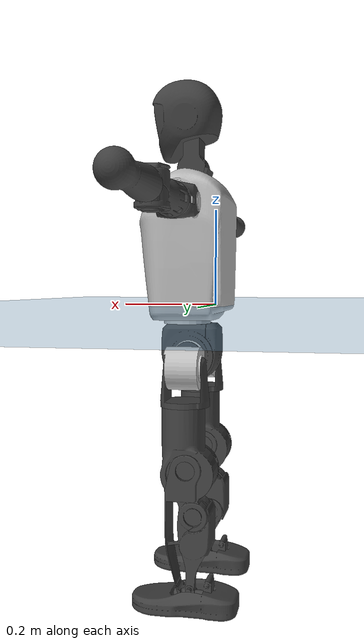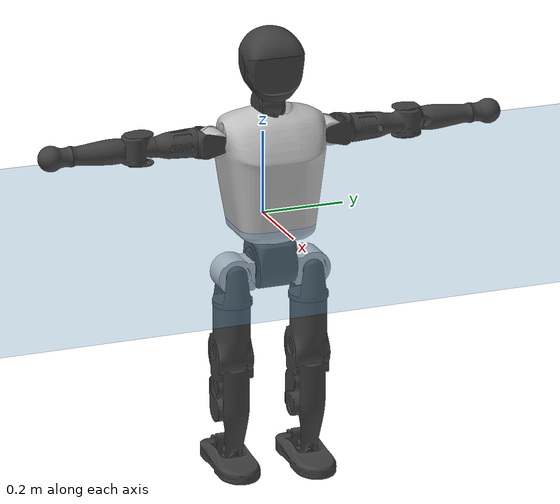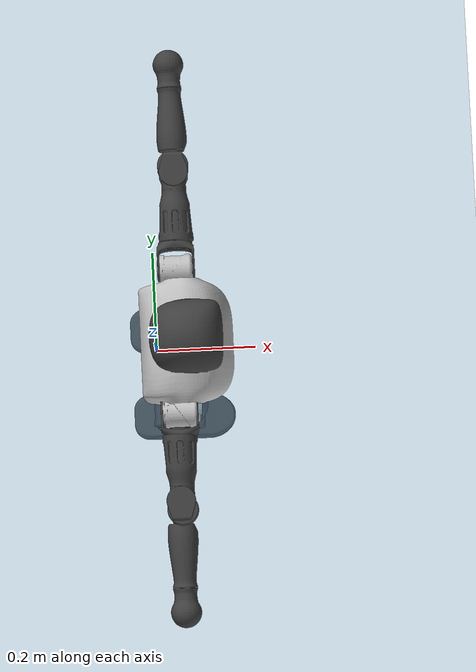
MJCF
<mujoco model="T1">
  <compiler angle="radian" assetdir="assets" balanceinertia="true" inertiafromgeom="false"/>

  <option timestep="0.005" density="1.2" viscosity="2e-05"/>

  <size nkey="1"/>

  <visual>
    <quality shadowsize="8192"/>
    <map shadowclip="0.5"/>
  </visual>

  <default>
    <default class="/">
      <joint armature="0.01" damping="0.01" frictionloss="0.1"/>
      <geom contype="0" conaffinity="0" group="1" solref="-1000 -80"/>
      <site size="0.01 0.005 0.005" group="5"/>
      <general forcelimited="true" biastype="affine" gainprm="25" biasprm="0 -25 -0.6"/>
      <default class="t1">
        <geom rgba="0.25 0.25 0.25 1"/>
        <default class="visual">
          <geom type="mesh" group="2"/>
        </default>
        <default class="collision">
          <geom group="3"/>
        </default>
        <default class="foot">
          <geom size="0.1115 0.05 0.015" type="box" condim="6" group="4" priority="1" solimp="0.015 1 0.015"/>
        </default>
        <default class="reward_collision_sphere">
          <geom group="5" rgba="1 0 0 1"/>
        </default>
      </default>
    </default>
  </default>

  <asset>
    <texture type="skybox" colorspace="auto" name="//unnamed_texture_0" builtin="gradient" rgb1="0.95 0.95 0.95" rgb2="0.95 0.95 0.95" width="100" height="600"/>
    <texture type="2d" colorspace="auto" name="texplane" builtin="checker" rgb1="0.345 0.575 0.748" rgb2="0.345 0.575 0.748" markrgb="1 1 1" width="512" height="512"/>
    <material name="MatPlane" class="/" texture="texplane" texuniform="true" texrepeat="2 2" specular="0.9"/>
    <mesh name="Trunk" class="/" file="Trunk.stl"/>
    <mesh name="H1" class="/" file="H1.stl"/>
    <mesh name="H2" class="/" file="H2.stl"/>
    <mesh name="AL1" class="/" file="AL1.stl"/>
    <mesh name="AL2" class="/" file="AL2.stl"/>
    <mesh name="AL3" class="/" file="AL3.stl"/>
    <mesh name="left_hand_link" class="/" file="left_hand_link.stl"/>
    <mesh name="AR1" class="/" file="AR1.stl"/>
    <mesh name="AR2" class="/" file="AR2.stl"/>
    <mesh name="AR3" class="/" file="AR3.stl"/>
    <mesh name="right_hand_link" class="/" file="right_hand_link.stl"/>
    <mesh name="Waist" class="/" file="Waist.stl"/>
    <mesh name="Hip_Pitch_Left" class="/" file="Hip_Pitch_Left.stl"/>
    <mesh name="Hip_Roll_Left" class="/" file="Hip_Roll_Left.stl"/>
    <mesh name="Hip_Yaw_Left" class="/" file="Hip_Yaw_Left.stl"/>
    <mesh name="Shank_Left" class="/" file="Shank_Left.stl"/>
    <mesh name="Ankle_Cross_Left" class="/" file="Ankle_Cross_Left.stl"/>
    <mesh name="left_foot_link" class="/" file="left_foot_link.stl"/>
    <mesh name="Hip_Pitch_Right" class="/" file="Hip_Pitch_Right.stl"/>
    <mesh name="Hip_Roll_Right" class="/" file="Hip_Roll_Right.stl"/>
    <mesh name="Hip_Yaw_Right" class="/" file="Hip_Yaw_Right.stl"/>
    <mesh name="Shank_Right" class="/" file="Shank_Right.stl"/>
    <mesh name="Ankle_Cross_Right" class="/" file="Ankle_Cross_Right.stl"/>
    <mesh name="right_foot_link" class="/" file="right_foot_link.stl"/>
  </asset>

  <worldbody>
    <geom name="floor" class="/" size="100 100 0.125" type="plane" group="0" material="MatPlane"/>
    <light name="toplight_shadow" class="/" pos="0 0 5" dir="0.0990148 0.0990148 -0.990148" type="directional" ambient="0.04 0.04 0.04" diffuse="0.55 0.55 0.55" specular="0.12 0.12 0.12"/>
    <light name="toplight_fill" class="/" pos="0 0 5" dir="0.0990148 0.0990148 -0.990148" type="directional" castshadow="false" ambient="0.04 0.04 0.04" diffuse="0.3 0.3 0.3" specular="0.08 0.08 0.08"/>
    <body name="trunk" childclass="t1" pos="-0.000140962 0.00010097 0.00259642" quat="1 -0.000338115 -0.000109735 -7.97295e-05">
      <inertial pos="0.0447051 7.45813e-05 0.0969308" quat="0.999915 -0.00343732 -0.0124458 -0.00171877" mass="7.45006" diaginertia="0.0309157 0.0422768 0.0344362"/>
      <joint name="//unnamed_joint_0" type="free" armature="0" damping="0" frictionloss="0"/>
      <geom name="//unnamed_geom_1" class="visual" rgba="0.76 0.76 0.76 1" mesh="Trunk"/>
      <geom name="//unnamed_geom_2" class="collision" size="0.0654285 0.087238 0.130857" pos="0.0486354 0 0.110025" type="box"/>
      <geom name="//unnamed_geom_3" class="reward_collision_sphere" size="0.100324" pos="0.0486354 0 0.0916874"/>
      <geom name="//unnamed_geom_4" class="reward_collision_sphere" size="0.0130857" pos="0.0486354 0.0756224 0"/>
      <geom name="//unnamed_geom_5" class="reward_collision_sphere" size="0.0130857" pos="0.0486354 -0.0756224 0"/>
      <geom name="//unnamed_geom_6" class="reward_collision_sphere" size="0.0130857" pos="0.0486354 0.0951953 0.165037"/>
      <geom name="//unnamed_geom_7" class="reward_collision_sphere" size="0.0130857" pos="0.0486354 -0.0951953 0.165037"/>
      <site name="imu" pos="0.012647 -0.0136761 0.00199893" size="0.0087238"/>
      <camera name="track" pos="0 -1.77935 0" quat="0.707107 0.707107 0 0" mode="trackcom"/>
      <camera name="ego_camera" pos="0.0988921 0 0.385087" quat="-0.5 -0.5 0.5 0.5"/>
      <body name="H1" pos="0.049242 -0.00209094 0.222458" quat="1 0.000175444 -0.000440281 -0.000446666">
        <inertial pos="-0.000957276 -0.000419226 0.0537226" quat="0.765488 -0.0133058 0.000396858 0.643313" mass="0.295719" diaginertia="8.80175e-05 0.000124419 0.000100813"/>
        <joint name="AAHead_yaw" pos="0 0 0" axis="2.1429e-05 0.000658187 1" stiffness="0.0126518" range="-1.56439 1.60526" armature="0.00838995" damping="0.00595242" frictionloss="0.0903804"/>
        <geom name="//unnamed_geom_8" class="visual" mesh="H1"/>
        <body name="H2" pos="-0.000216857 -0.00282431 0.057371" quat="1 -0.000129021 -3.1339e-05 0.000196767">
          <inertial pos="0.00817006 0.00354397 0.092251" quat="0.988432 0.106238 -0.0753995 -0.0776627" mass="0.434272" diaginertia="0.000716099 0.00108279 0.0011361"/>
          <joint name="Head_pitch" pos="0 0 0" axis="0.00238023 -0.999992 -0.00322889" stiffness="0.00297607" range="-1.21955 0.390749" armature="0.00755761" damping="0" frictionloss="0.0881113"/>
          <geom name="//unnamed_geom_9" class="visual" mesh="H2"/>
          <geom name="//unnamed_geom_10" class="collision" size="0.0697904" pos="0.00810591 0 0.100856"/>
          <geom name="//unnamed_geom_11" class="reward_collision_sphere" size="0.0785142" pos="0.0162118 0 0.0916874"/>
        </body>
      </body>
      <body name="AL1" pos="0.046495 0.0955862 0.199469" quat="1 -0.000107644 0.000436042 -2.1235e-05">
        <inertial pos="1.58657e-05 0.0406851 0.00262827" quat="0.508261 0.494065 -0.50033 0.497233" mass="0.358334" diaginertia="0.000487709 0.000726726 0.000192051"/>
        <joint name="Left_Shoulder_Pitch" pos="0 0 0" axis="0.00411991 0.99999 0.0017361" range="-3.36396 1.17756" armature="0.00825738" damping="0.00327146" frictionloss="0.0886832"/>
        <geom name="//unnamed_geom_12" class="visual" rgba="0.76 0.76 0.76 1" mesh="AL1"/>
        <body name="AL2" pos="0.000745952 0.0455268 -0.00110335" quat="0.999999 -0.000144531 0.00015701 0.00135048">
          <inertial pos="0.00365277 0.0329768 -0.00264028" quat="0.488603 0.515124 -0.48771 0.507989" mass="0.113106" diaginertia="0.00014563 0.000205421 0.000119891"/>
          <joint name="Left_Shoulder_Roll" pos="0 0 0" axis="-1 0.000770515 -0.000605246" range="-1.61378 1.75567" armature="0.00921403" damping="0" frictionloss="0.0873721"/>
          <geom name="//unnamed_geom_13" class="visual" mesh="AL2"/>
          <body name="AL3" pos="0.00310414 0.0572074 0.000689762" quat="0.999999 -0.000771427 3.30193e-05 -0.000771241">
            <inertial pos="-0.00138185 0.0755964 0.000311223" quat="0.704682 0.709402 -0.0122783 0.00465692" mass="0.699363" diaginertia="0.00466425 0.00739397 0.000410672"/>
            <joint name="Left_Elbow_Pitch" pos="0 0 0" axis="-0.00236143 -0.999996 0.001325" range="-2.29037 2.28148" armature="0.00893533" damping="0.0110406" frictionloss="0.0896494"/>
            <geom name="//unnamed_geom_14" class="visual" mesh="AL3"/>
            <geom name="//unnamed_geom_15" class="collision" size="0.0261714 0.0654285" pos="0 0.0444838 0" quat="0.707105 0.707108 0 0" type="cylinder"/>
            <geom name="//unnamed_geom_16" class="reward_collision_sphere" size="0.0314057"/>
            <body name="left_hand_link" pos="0.000448133 0.133793 0.00314752" quat="0.999999 -0.000963399 0.000568368 0.000792168">
              <inertial pos="-0.000111989 0.0968672 -0.00217548" quat="0.713619 0.700448 0.00816961 -0.00740592" mass="0.209862" diaginertia="0.00281102 0.00442386 0.000133416"/>
              <joint name="Left_Elbow_Yaw" pos="0 0 0" axis="-0.014138 -0.00780191 0.99987" stiffness="0.000255491" range="-2.44647 0.0481072" armature="0.00885264" damping="0.00224046" frictionloss="0.0982593"/>
              <geom name="//unnamed_geom_17" class="visual" mesh="left_hand_link"/>
              <geom name="//unnamed_geom_18" class="collision" size="0.0261714 0.0763333" pos="0 0.115658 0" quat="0.707105 0.707108 0 0" type="cylinder"/>
              <geom name="//unnamed_geom_19" class="reward_collision_sphere" size="0.043619"/>
              <geom name="//unnamed_geom_20" class="reward_collision_sphere" size="0.0305333" pos="0 0.0978643 0"/>
              <geom name="//unnamed_geom_21" class="reward_collision_sphere" size="0.0305333" pos="0 0.19128 0"/>
            </body>
          </body>
        </body>
      </body>
      <body name="AR1" pos="0.0436822 -0.0911604 0.200061" quat="1 -6.24949e-05 -9.46175e-05 2.39183e-05">
        <inertial pos="-0.00120706 -0.0393259 -0.00123235" quat="0.504615 0.49588 -0.504184 0.495242" mass="0.35891" diaginertia="0.000483906 0.00073459 0.000190037"/>
        <joint name="Right_Shoulder_Pitch" pos="0 0 0" axis="-0.0054716 -0.999981 -0.00286199" stiffness="0.0162207" range="-1.17405 3.33111" armature="0.00853109" damping="0.0212911" frictionloss="0.0887542"/>
        <geom name="//unnamed_geom_22" class="visual" rgba="0.76 0.76 0.76 1" mesh="AR1"/>
        <body name="AR2" pos="-0.00284182 -0.038446 0.000549281" quat="1 0.000528282 -0.000499539 4.40811e-05">
          <inertial pos="0.00112496 -0.0334776 -0.00199078" quat="0.512462 0.488908 -0.516215 0.481532" mass="0.105149" diaginertia="0.000135876 0.000187042 0.000115788"/>
          <joint name="Right_Shoulder_Roll" pos="0 0 0" axis="-0.999974 -0.0044594 0.00568298" stiffness="0.0108704" range="-1.71531 1.51746" armature="0.00897923" damping="0.00628306" frictionloss="0.0753341"/>
          <geom name="//unnamed_geom_23" class="visual" mesh="AR2"/>
          <body name="AR3" pos="-0.00138235 -0.0512894 0.00251354" quat="1 -3.66452e-05 0.000106257 0.000341401">
            <inertial pos="-0.000407522 -0.0751131 -0.000285167" quat="0.715784 0.698313 0.00288182 -0.0021495" mass="0.66451" diaginertia="0.00441557 0.00728532 0.000405344"/>
            <joint name="Right_Elbow_Pitch" pos="0 0 0" axis="0.000447432 1 -0.000838279" stiffness="0.0119952" range="-2.27057 2.26316" armature="0.00917654" damping="0.0152547" frictionloss="0.09888"/>
            <geom name="//unnamed_geom_24" class="visual" mesh="AR3"/>
            <geom name="//unnamed_geom_25" class="collision" size="0.0261714 0.0654285" pos="0 -0.0444838 0" quat="0.707105 0.707108 0 0" type="cylinder"/>
            <geom name="//unnamed_geom_26" class="reward_collision_sphere" size="0.0314057"/>
            <body name="right_hand_link" pos="-0.00290681 -0.129403 -0.00094812" quat="1 -0.000317418 0.000670915 -0.000285206">
              <inertial pos="-0.00110536 -0.097626 0.00339045" quat="0.700048 0.714016 0.00938183 0.0050931" mass="0.207374" diaginertia="0.00269249 0.00441464 0.000135077"/>
              <joint name="Right_Elbow_Yaw" pos="0 0 0" axis="0.00264832 0.00224105 0.999994" stiffness="0.00418027" range="-0.0532157 2.41866" armature="0.00996705" damping="0.00988095" frictionloss="0.0881272"/>
              <geom name="//unnamed_geom_27" class="visual" mesh="right_hand_link"/>
              <geom name="//unnamed_geom_28" class="collision" size="0.0261714 0.0763333" pos="0 -0.115658 0" quat="0.707105 0.707108 0 0" type="cylinder"/>
              <geom name="//unnamed_geom_29" class="reward_collision_sphere" size="0.043619"/>
              <geom name="//unnamed_geom_30" class="reward_collision_sphere" size="0.0305333" pos="0 -0.0978643 0"/>
              <geom name="//unnamed_geom_31" class="reward_collision_sphere" size="0.0305333" pos="0 -0.19128 0"/>
            </body>
          </body>
        </body>
      </body>
      <body name="Waist" pos="0.051001 -0.000837581 -0.108334" quat="1 8.76544e-05 -1.13814e-05 4.02344e-05">
        <inertial pos="0.00403107 -0.00106836 0.00592777" quat="0.984154 0.00205135 -0.177263 0.00380313" mass="1.70092" diaginertia="0.0018192 0.00276126 0.00293331"/>
        <joint name="Waist" pos="0 0 0" axis="0.00196703 -0.00195799 0.999996" range="-1.52051 1.58008" armature="0.00765491" damping="0.0124177" frictionloss="0.0902152"/>
        <geom name="//unnamed_geom_32" class="visual" mesh="Waist"/>
        <body name="Hip_Pitch_Left" pos="-0.00177719 0.0963472 -0.000951964" quat="0.999999 -0.000610669 0.0010475 -0.000121951">
          <inertial pos="-0.000601485 -0.00409925 -0.0164185" quat="0.975316 0.22037 0.0139164 0.00129424" mass="0.669849" diaginertia="0.000620507 0.000817133 0.000793414"/>
          <joint name="Left_Hip_Pitch" pos="0 0 0" axis="0.000474589 1 0.000560523" stiffness="0.0101277" range="-1.80125 1.61374" armature="0.00880573" damping="0.0147175" frictionloss="0.0870598"/>
          <geom name="//unnamed_geom_33" class="visual" rgba="0.76 0.76 0.76 1" mesh="Hip_Pitch_Left"/>
          <body name="Hip_Roll_Left" pos="0.0010634 -0.000210563 -0.0205124" quat="0.999999 0.000187885 0.00107552 0.000237884">
            <inertial pos="0.000401339 -0.000211918 -0.0486975" quat="0.709018 -0.00549786 -0.00594892 0.705144" mass="0.256882" diaginertia="0.000614167 0.000822142 0.00032426"/>
            <joint name="Left_Hip_Roll" pos="0 0 0" axis="-0.999998 2.56844e-05 0.00212533" range="-1.58166 0.212217" armature="0.0086024" damping="0.0155187" frictionloss="0.0985972"/>
            <geom name="//unnamed_geom_34" class="visual" mesh="Hip_Roll_Left"/>
            <geom name="//unnamed_geom_35" class="reward_collision_sphere" size="0.0479809"/>
            <body name="Hip_Yaw_Left" pos="0.000893528 -0.000253502 -0.0772421" quat="1 0.000125672 -0.000587113 -0.000645311">
              <inertial pos="-0.00457404 -0.00107743 -0.0826768" quat="0.699177 -0.0304066 -0.0432898 0.712989" mass="1.41887" diaginertia="0.0088892 0.0136559 0.0017066"/>
              <joint name="Left_Hip_Yaw" pos="0 0 0" axis="0.00450207 -0.0106167 -0.999934" range="-0.996807 0.980323" armature="0.00856225" damping="0.0124247" frictionloss="0.0875088"/>
              <geom name="//unnamed_geom_36" class="visual" mesh="Hip_Yaw_Left"/>
              <geom name="//unnamed_geom_37" class="collision" size="0.043619 0.0697904" type="cylinder"/>
              <body name="Shank_Left" pos="-0.0114475 1.14814e-05 -0.124668" quat="1 -0.000339271 0.000289021 0.000485739">
                <inertial pos="-0.00541266 0.000548406 -0.114405" quat="0.996637 0.00234553 -0.0315045 0.0756144" mass="1.16571" diaginertia="0.0120551 0.0199686 0.00122738"/>
                <joint name="Left_Knee_Pitch" pos="0 0 0" axis="-0.000429168 1 0.000721754" stiffness="0.00266323" range="0.00254461 2.34387" armature="0.00855027" damping="0.0153026" frictionloss="0.0991896"/>
                <geom name="//unnamed_geom_38" class="visual" mesh="Shank_Left"/>
                <geom name="//unnamed_geom_39" class="collision" size="0.043619 0.0654285" pos="0 0 -0.110025" type="cylinder"/>
                <geom name="//unnamed_geom_40" class="reward_collision_sphere" size="0.0567047"/>
                <body name="Ankle_Cross_Left" pos="-0.0013764 -0.000825429 -0.258417" quat="1 8.43618e-05 0.000732017 -0.000415359">
                  <inertial pos="-0.0019531 0.00131764 -0.00987022" quat="0.443143 0.551041 0.551027 0.443111" mass="0.0494659" diaginertia="1.08537e-05 1.43865e-05 7.43983e-06"/>
                  <joint name="Left_Ankle_Pitch" pos="0 0 0" axis="0.00735124 0.999969 0.0029594" range="-0.916596 0.383252" armature="0.00811125" damping="0.0111204" frictionloss="0.0991989"/>
                  <geom name="//unnamed_geom_41" class="visual" mesh="Ankle_Cross_Left"/>
                  <body name="left_foot_link" pos="0.00182936 -0.000123833 -0.0145522" quat="1 3.58823e-06 -1.42008e-05 -3.20738e-06">
                    <inertial pos="-5.12497e-05 -0.00269692 -0.00926263" quat="0.000584492 0.619397 -0.0014914 0.785076" mass="0.450273" diaginertia="0.000973425 0.00133636 0.00141517"/>
                    <joint name="Left_Ankle_Roll" pos="0 0 0" axis="-0.999997 0.000812171 -0.00243379" range="-0.480743 0.43344" armature="0.00873068" damping="0.00983618" frictionloss="0.0837716"/>
                    <geom name="//unnamed_geom_42" class="visual" mesh="left_foot_link"/>
                    <geom name="left_foot" class="foot" size="0.0993729 0.044537 0.0141576" pos="0.00810591 0 -0.0137531"/>
                    <geom name="//unnamed_geom_44" class="reward_collision_sphere" size="0.0453638" pos="0.00810591 0 -0.0137531"/>
                    <geom name="//unnamed_geom_45" class="reward_collision_sphere" size="0.0261714" pos="0.0770061 -0.0204625 -0.0137531"/>
                    <geom name="//unnamed_geom_46" class="reward_collision_sphere" size="0.0261714" pos="-0.0567413 -0.0204625 -0.0137531"/>
                    <site name="left_foot" class="foot" pos="0.00810591 0 -0.0137531" size="0.0087238"/>
                  </body>
                </body>
              </body>
            </body>
          </body>
        </body>
        <body name="Hip_Pitch_Right" pos="0.000390352 -0.0948999 0.00195585" quat="0.999999 -0.000667239 0.00039666 -0.000790183">
          <inertial pos="0.000452143 0.006361 -0.0136338" quat="0.970315 -0.241385 0.013439 -0.00646139" mass="0.673211" diaginertia="0.000625877 0.000810898 0.00082882"/>
          <joint name="Right_Hip_Pitch" pos="0 0 0" axis="-0.00369551 -0.999926 -0.011607" range="-1.57852 1.81588" armature="0.00981247" damping="0.011771" frictionloss="0.0940558"/>
          <geom name="//unnamed_geom_47" class="visual" rgba="0.76 0.76 0.76 1" mesh="Hip_Pitch_Right"/>
          <body name="Hip_Roll_Right" pos="0.00131697 -0.000838836 -0.0163581" quat="0.999999 0.00116536 -0.000160538 0.000514584">
            <inertial pos="0.00381784 -0.000392291 -0.0513249" quat="0.711166 -0.00888014 -0.017283 0.702755" mass="0.248011" diaginertia="0.000574424 0.000811766 0.000322543"/>
            <joint name="Right_Hip_Roll" pos="0 0 0" axis="-0.999987 0.00506367 0.000828797" stiffness="0.00810358" range="-0.196363 1.62553" armature="0.00848771" damping="0.0039437" frictionloss="0.0873442"/>
            <geom name="//unnamed_geom_48" class="visual" mesh="Hip_Roll_Right"/>
            <geom name="//unnamed_geom_49" class="reward_collision_sphere" size="0.0479809"/>
            <body name="Hip_Yaw_Right" pos="0.000257849 -0.00237654 -0.0744258" quat="0.999999 2.47033e-05 0.00144394 0.000520069">
              <inertial pos="-0.00329391 0.000748926 -0.0821879" quat="0.71445 -0.0312562 -0.0442474 0.697586" mass="1.49321" diaginertia="0.00964273 0.0150434 0.00176371"/>
              <joint name="Right_Hip_Yaw" pos="0 0 0" axis="0.00363041 0.00453369 -0.999983" range="-1.01937 0.958157" armature="0.0088416" damping="0.00802774" frictionloss="0.0753467"/>
              <geom name="//unnamed_geom_50" class="visual" mesh="Hip_Yaw_Right"/>
              <geom name="//unnamed_geom_51" class="collision" size="0.043619 0.0697904" type="cylinder"/>
              <body name="Shank_Right" pos="-0.0138439 0.0017686 -0.123771" quat="0.999999 -0.000862091 -0.000740471 0.000595134">
                <inertial pos="-0.00210267 0.00126908 -0.111192" quat="0.999156 -0.00151272 -0.0252657 -0.032352" mass="1.24192" diaginertia="0.0123495 0.019064 0.00124927"/>
                <joint name="Right_Knee_Pitch" pos="0 0 0" axis="-0.000634438 -0.999993 -0.00366239" stiffness="0.0065307" range="-2.32577 -0.00666596" armature="0.00851766" damping="0.0175712" frictionloss="0.0902521"/>
                <geom name="//unnamed_geom_52" class="visual" mesh="Shank_Right"/>
                <geom name="//unnamed_geom_53" class="collision" size="0.043619 0.0654285" pos="0 0 -0.110025" type="cylinder"/>
                <geom name="//unnamed_geom_54" class="reward_collision_sphere" size="0.0567047"/>
                <body name="Ankle_Cross_Right" pos="-0.000659974 -0.00109258 -0.258696" quat="0.999999 0.0011074 -0.000755795 -0.000450569">
                  <inertial pos="-0.00281786 8.87828e-05 -0.00693676" quat="0.445412 0.55063 0.551159 0.441178" mass="0.0454348" diaginertia="9.86508e-06 1.39031e-05 7.21403e-06"/>
                  <joint name="Right_Ankle_Pitch" pos="0 0 0" axis="-0.00443164 -0.999916 0.0121659" range="-0.346622 0.823717" armature="0.00985616" damping="0" frictionloss="0.0763703"/>
                  <geom name="//unnamed_geom_55" class="visual" mesh="Ankle_Cross_Right"/>
                  <body name="right_foot_link" pos="0.002355 -0.00213638 -0.00900094" quat="1 -0.000305583 -0.000590856 -0.000323716">
                    <inertial pos="-0.00082866 -0.000374106 -0.0110333" quat="0.00404124 0.621238 -0.00312603 0.783606" mass="0.472382" diaginertia="0.000922587 0.00132174 0.00140791"/>
                    <joint name="Right_Ankle_Roll" pos="0 0 0" axis="-0.999899 -0.00992545 -0.0101964" range="-0.389061 0.460834" armature="0.00754314" damping="0.00602413" frictionloss="0.0848358"/>
                    <geom name="//unnamed_geom_56" class="visual" mesh="right_foot_link"/>
                    <geom name="right_foot" class="foot" size="0.0945851 0.0443445 0.0135395" pos="0.00810591 0 -0.0137531"/>
                    <geom name="//unnamed_geom_58" class="reward_collision_sphere" size="0.0348952"/>
                    <geom name="//unnamed_geom_59" class="reward_collision_sphere" size="0.0261714" pos="0.00810591 0 -0.0137531"/>
                    <geom name="//unnamed_geom_60" class="reward_collision_sphere" size="0.0261714" pos="0.0770061 0.0204625 -0.0137531"/>
                    <geom name="//unnamed_geom_61" class="reward_collision_sphere" size="0.0261714" pos="-0.0567413 0.0204625 -0.0137531"/>
                    <site name="right_foot" class="foot" pos="0.00810591 0 -0.0137531" size="0.0087238"/>
                  </body>
                </body>
              </body>
            </body>
          </body>
        </body>
      </body>
    </body>
  </worldbody>

  <contact>
    <pair class="/" geom1="floor" geom2="left_foot" name="//unnamed_contact_0"/>
    <pair class="/" geom1="floor" geom2="right_foot" name="//unnamed_contact_1"/>
  </contact>

  <actuator>
    <general name="AAHead_yaw" class="/" joint="AAHead_yaw" forcerange="-5.88344 5.88344" gainprm="23.4648" biasprm="0 -23.4648 -0.520575"/>
    <general name="Head_pitch" class="/" joint="Head_pitch" forcerange="-5.89995 5.89995" gainprm="23.4648" biasprm="0 -23.4648 -0.520575"/>
    <general name="Left_Shoulder_Pitch" class="/" joint="Left_Shoulder_Pitch" forcerange="-15.2359 15.2359" gainprm="23.4648" biasprm="0 -23.4648 -0.520575"/>
    <general name="Left_Shoulder_Roll" class="/" joint="Left_Shoulder_Roll" forcerange="-15.5941 15.5941" gainprm="23.4648" biasprm="0 -23.4648 -0.520575"/>
    <general name="Left_Elbow_Pitch" class="/" joint="Left_Elbow_Pitch" forcerange="-17.3615 17.3615" gainprm="23.4648" biasprm="0 -23.4648 -0.520575"/>
    <general name="Left_Elbow_Yaw" class="/" joint="Left_Elbow_Yaw" forcerange="-16.4191 16.4191" gainprm="23.4648" biasprm="0 -23.4648 -0.520575"/>
    <general name="Right_Shoulder_Pitch" class="/" joint="Right_Shoulder_Pitch" forcerange="-15.5423 15.5423" gainprm="23.4648" biasprm="0 -23.4648 -0.520575"/>
    <general name="Right_Shoulder_Roll" class="/" joint="Right_Shoulder_Roll" forcerange="-15.6607 15.6607" gainprm="23.4648" biasprm="0 -23.4648 -0.520575"/>
    <general name="Right_Elbow_Pitch" class="/" joint="Right_Elbow_Pitch" forcerange="-16.0512 16.0512" gainprm="23.4648" biasprm="0 -23.4648 -0.520575"/>
    <general name="Right_Elbow_Yaw" class="/" joint="Right_Elbow_Yaw" forcerange="-17.2226 17.2226" gainprm="23.4648" biasprm="0 -23.4648 -0.520575"/>
    <general name="Waist" class="/" joint="Waist" forcerange="-27.2298 27.2298" gainprm="23.4648" biasprm="0 -23.4648 -0.520575"/>
    <general name="Left_Hip_Pitch" class="/" joint="Left_Hip_Pitch" forcerange="-35.5029 35.5029" gainprm="23.4648" biasprm="0 -23.4648 -0.520575"/>
    <general name="Left_Hip_Roll" class="/" joint="Left_Hip_Roll" forcerange="-25.1252 25.1252" gainprm="23.4648" biasprm="0 -23.4648 -0.520575"/>
    <general name="Left_Hip_Yaw" class="/" joint="Left_Hip_Yaw" forcerange="-25.9316 25.9316" gainprm="23.4648" biasprm="0 -23.4648 -0.520575"/>
    <general name="Left_Knee_Pitch" class="/" joint="Left_Knee_Pitch" forcerange="-57.2218 57.2218" gainprm="23.4648" biasprm="0 -23.4648 -0.520575"/>
    <general name="Left_Ankle_Pitch" class="/" joint="Left_Ankle_Pitch" forcerange="-16.7242 16.7242" gainprm="23.4648" biasprm="0 -23.4648 -0.520575"/>
    <general name="Left_Ankle_Roll" class="/" joint="Left_Ankle_Roll" forcerange="-13.2839 13.2839" gainprm="23.4648" biasprm="0 -23.4648 -0.520575"/>
    <general name="Right_Hip_Pitch" class="/" joint="Right_Hip_Pitch" forcerange="-43.2383 43.2383" gainprm="23.4648" biasprm="0 -23.4648 -0.520575"/>
    <general name="Right_Hip_Roll" class="/" joint="Right_Hip_Roll" forcerange="-25.1424 25.1424" gainprm="23.4648" biasprm="0 -23.4648 -0.520575"/>
    <general name="Right_Hip_Yaw" class="/" joint="Right_Hip_Yaw" forcerange="-25.8717 25.8717" gainprm="23.4648" biasprm="0 -23.4648 -0.520575"/>
    <general name="Right_Knee_Pitch" class="/" joint="Right_Knee_Pitch" forcerange="-56.1626 56.1626" gainprm="23.4648" biasprm="0 -23.4648 -0.520575"/>
    <general name="Right_Ankle_Pitch" class="/" joint="Right_Ankle_Pitch" forcerange="-16.93 16.93" gainprm="23.4648" biasprm="0 -23.4648 -0.520575"/>
    <general name="Right_Ankle_Roll" class="/" joint="Right_Ankle_Roll" forcerange="-11.7853 11.7853" gainprm="23.4648" biasprm="0 -23.4648 -0.520575"/>
  </actuator>

  <sensor>
    <gyro site="imu" name="imu_angular_velocity"/>
    <velocimeter site="imu" name="imu_linear_velocity"/>
    <framelinvel objtype="site" objname="left_foot" name="left_foot_global_linear_velocity"/>
    <framelinvel objtype="site" objname="right_foot" name="right_foot_global_linear_velocity"/>
  </sensor>

  <keyframe>
    <key name="home" qpos="0 0 0.6385 1 0 0 0 0 0 0 1.4 0 -0.4 0 -1.4 0 0.4 0 -0.4 0 0 0.8 -0.4 0 0.4 0 0 -0.8 0.4 0"/>
  </keyframe>
</mujoco>
